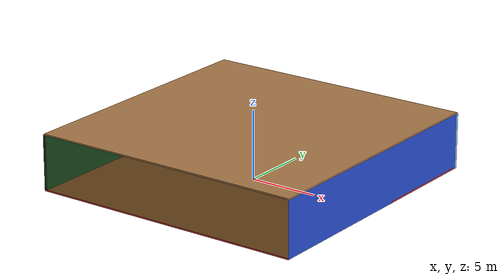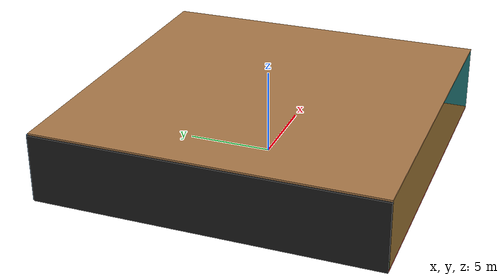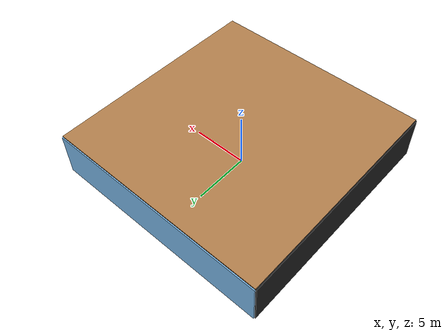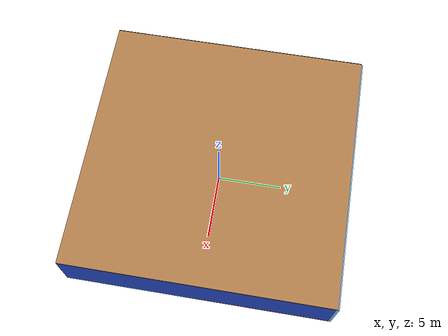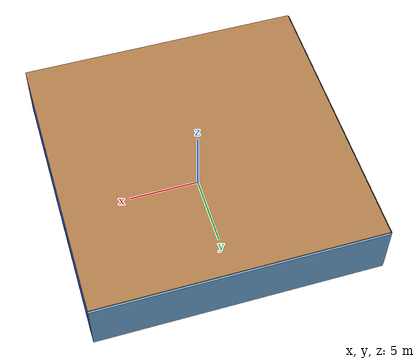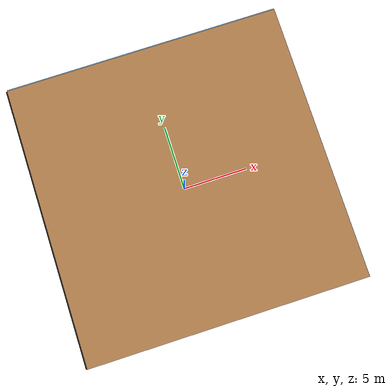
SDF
<sdf version="1.4">
 <world name="default">
  <physics type="ode">
   <max_step_size>0.001</max_step_size>
   <real_time_factor>1</real_time_factor>
   <real_time_update_rate>1000</real_time_update_rate>
   <gravity>0 0 -9.8</gravity>
  </physics>
  <scene><ambient>0.4 0.4 0.4 1</ambient><background>0.7 0.7 0.7 1</background><shadows>1</shadows></scene>
  <model name="Surrounding">
   <static>1</static>
   <link name="Ceiling">
    <collision name="Ceiling_Collision"><geometry><box><size>20 20 0.1</size></box></geometry></collision>
    <visual name="Ceiling_Visual">
     <geometry><box><size>20 20 0.1</size></box></geometry>
     <material>
      <script><uri>file://media/materials/scripts/gazebo.material</uri><name>Gazebo/Wood</name></script>
     </material>
    </visual>
    <pose>0 0 4.05 0 0 0</pose>
   </link>
   <link name="Wall_South">
    <collision name="Wall_South_Collision">
     <geometry><box><size>20 0 4</size></box></geometry>
     <pose>0 0 2 0 -0 0</pose>
    </collision>
    <visual name="Wall_South_Visual">
     <pose>0 0 2 0 -0 0</pose>
     <geometry><box><size>20 0 4</size></box></geometry>
     <material>
      <script><uri>file://media/materials/scripts/gazebo.material</uri><name>Gazebo/GreenTransparent</name></script>
     </material>
    </visual>
    <velocity_decay><linear>0</linear><angular>0</angular></velocity_decay>
    <pose>0 -10 0 0 -0 0</pose>
   </link>
   <link name="Wall_East">
    <collision name="Wall_21_Collision">
     <geometry><box><size>20 0 4</size></box></geometry>
     <pose>0 0 2 0 -0 0</pose>
    </collision>
    <visual name="Wall_21_Visual">
     <pose>0 0 2 0 -0 0</pose>
     <geometry><box><size>20 0 4</size></box></geometry>
     <material>
      <script><uri>file://media/materials/scripts/gazebo.material</uri><name>Gazebo/BlueGlow</name></script>
     </material>
    </visual>
    <velocity_decay><linear>0</linear><angular>0</angular></velocity_decay>
    <pose>10 0 0 0 -0 1.5708</pose>
   </link>
   <link name="Wall_North">
    <collision name="Wall_22_Collision">
     <geometry><box><size>20 0.2 4</size></box></geometry>
     <pose>0 0 2 0 -0 0</pose>
    </collision>
    <visual name="Wall_22_Visual">
     <pose>0 0 2 0 -0 0</pose>
     <geometry><box><size>20 0.2 4</size></box></geometry>
     <material>
      <script><uri>file://media/materials/scripts/gazebo.material</uri><name>Gazebo/SkyBlue</name></script>
     </material>
    </visual>
    <velocity_decay><linear>0</linear><angular>0</angular></velocity_decay>
    <pose>0 10 0 0 -0 0</pose>
   </link>
   <link name="Wall_West">
    <collision name="Wall_23_Collision">
     <geometry><box><size>20 0.2 4</size></box></geometry>
     <pose>0 0 2 0 -0 0</pose>
    </collision>
    <visual name="Wall_23_Visual">
     <pose>0 0 2 0 -0 0</pose>
     <geometry><box><size>20 0.2 4</size></box></geometry>
     <material>
      <script><uri>file://media/materials/scripts/gazebo.material</uri><name>Gazebo/FlatBlack</name></script>
     </material>
    </visual>
    <velocity_decay><linear>0</linear><angular>0</angular></velocity_decay>
    <pose>-10 0 0 0 0 -1.5708</pose>
   </link>
   <link name="Ground_link">
    <collision name="collision">
     <pose>0 0 .05 0 -0 0</pose>
     <geometry><box><size>20 20 0.1</size></box></geometry>
    </collision>
    <visual name="visual">
     <pose>0 0 .05 0 -0 0</pose>
     <geometry><box><size>20 20 0.1</size></box></geometry>
     <material>
      <script><uri>file://media/materials/scripts/gazebo.material</uri><name>Gazebo/RedBright</name></script>
     </material>
    </visual>
   </link>
   <static>1</static>
  </model>
  <spherical_coordinates>
   <surface_model>EARTH_WGS84</surface_model>
   <latitude_deg>0</latitude_deg>
   <longitude_deg>0</longitude_deg>
   <elevation>0</elevation>
   <heading_deg>0</heading_deg>
  </spherical_coordinates>
  <light name="lightball_0" type="diffuse">
   <diffuse>0.8 0.8 0.8 1</diffuse>
   <specular>0.2 0.2 0.2 1</specular>
   <attenuation>
    <range>100</range>
    <constant>0.7</constant>
    <linear>0.01</linear>
    <quadratic>0.001</quadratic>
   </attenuation>
   <direction>-0.5 0.1 -0.9</direction>
   <pose>-8.53108662582 -6.27124077405 3.87354249046 0 0 0</pose>
  </light>
  <light name="lightball_1" type="diffuse">
   <diffuse>0.8 0.8 0.8 1</diffuse>
   <specular>0.2 0.2 0.2 1</specular>
   <attenuation>
    <range>100</range>
    <constant>0.7</constant>
    <linear>0.01</linear>
    <quadratic>0.001</quadratic>
   </attenuation>
   <direction>-0.5 0.1 -0.9</direction>
   <pose>7.86595504722 5.01205081302 1.62002464436 0 0 0</pose>
  </light>
  <light name="lightball_2" type="diffuse">
   <diffuse>0.8 0.8 0.8 1</diffuse>
   <specular>0.2 0.2 0.2 1</specular>
   <attenuation>
    <range>100</range>
    <constant>0.7</constant>
    <linear>0.01</linear>
    <quadratic>0.001</quadratic>
   </attenuation>
   <direction>-0.5 0.1 -0.9</direction>
   <pose>-3.87781314636 -4.51995348665 2.072991493 0 0 0</pose>
  </light>
  <light name="lightball_3" type="diffuse">
   <diffuse>0.8 0.8 0.8 1</diffuse>
   <specular>0.2 0.2 0.2 1</specular>
   <attenuation>
    <range>100</range>
    <constant>0.7</constant>
    <linear>0.01</linear>
    <quadratic>0.001</quadratic>
   </attenuation>
   <direction>-0.5 0.1 -0.9</direction>
   <pose>-8.15370287127 -2.47082702577 2.88030177947 0 0 0</pose>
  </light>
  <light name="lightball_4" type="diffuse">
   <diffuse>0.8 0.8 0.8 1</diffuse>
   <specular>0.2 0.2 0.2 1</specular>
   <attenuation>
    <range>100</range>
    <constant>0.7</constant>
    <linear>0.01</linear>
    <quadratic>0.001</quadratic>
   </attenuation>
   <direction>-0.5 0.1 -0.9</direction>
   <pose>-2.76512380046 -6.18629890254 3.72592345806 0 0 0</pose>
  </light>
  <light name="lightball_5" type="diffuse">
   <diffuse>0.8 0.8 0.8 1</diffuse>
   <specular>0.2 0.2 0.2 1</specular>
   <attenuation>
    <range>100</range>
    <constant>0.7</constant>
    <linear>0.01</linear>
    <quadratic>0.001</quadratic>
   </attenuation>
   <direction>-0.5 0.1 -0.9</direction>
   <pose>6.036838578 -8.41338662767 1.86056886314 0 0 0</pose>
  </light>
  <light name="lightball_6" type="diffuse">
   <diffuse>0.8 0.8 0.8 1</diffuse>
   <specular>0.2 0.2 0.2 1</specular>
   <attenuation>
    <range>100</range>
    <constant>0.7</constant>
    <linear>0.01</linear>
    <quadratic>0.001</quadratic>
   </attenuation>
   <direction>-0.5 0.1 -0.9</direction>
   <pose>-7.01137999915 -1.72799858741 3.6032329963 0 0 0</pose>
  </light>
  <light name="lightball_7" type="diffuse">
   <diffuse>0.8 0.8 0.8 1</diffuse>
   <specular>0.2 0.2 0.2 1</specular>
   <attenuation>
    <range>100</range>
    <constant>0.7</constant>
    <linear>0.01</linear>
    <quadratic>0.001</quadratic>
   </attenuation>
   <direction>-0.5 0.1 -0.9</direction>
   <pose>8.68012426511 0.255790227054 3.43884599046 0 0 0</pose>
  </light>
  <light name="lightball_8" type="diffuse">
   <diffuse>0.8 0.8 0.8 1</diffuse>
   <specular>0.2 0.2 0.2 1</specular>
   <attenuation>
    <range>100</range>
    <constant>0.7</constant>
    <linear>0.01</linear>
    <quadratic>0.001</quadratic>
   </attenuation>
   <direction>-0.5 0.1 -0.9</direction>
   <pose>-5.81362993295 -5.9075122317 1.77342862225 0 0 0</pose>
  </light>
  <light name="lightball_9" type="diffuse">
   <diffuse>0.8 0.8 0.8 1</diffuse>
   <specular>0.2 0.2 0.2 1</specular>
   <attenuation>
    <range>100</range>
    <constant>0.7</constant>
    <linear>0.01</linear>
    <quadratic>0.001</quadratic>
   </attenuation>
   <direction>-0.5 0.1 -0.9</direction>
   <pose>5.9543144958 -7.6021388134 2.09469588076 0 0 0</pose>
  </light>
  <light name="lightball_10" type="diffuse">
   <diffuse>0.8 0.8 0.8 1</diffuse>
   <specular>0.2 0.2 0.2 1</specular>
   <attenuation>
    <range>100</range>
    <constant>0.7</constant>
    <linear>0.01</linear>
    <quadratic>0.001</quadratic>
   </attenuation>
   <direction>-0.5 0.1 -0.9</direction>
   <pose>1.8192532816 7.45002588818 2.63490928035 0 0 0</pose>
  </light>
  <light name="lightball_11" type="diffuse">
   <diffuse>0.8 0.8 0.8 1</diffuse>
   <specular>0.2 0.2 0.2 1</specular>
   <attenuation>
    <range>100</range>
    <constant>0.7</constant>
    <linear>0.01</linear>
    <quadratic>0.001</quadratic>
   </attenuation>
   <direction>-0.5 0.1 -0.9</direction>
   <pose>-2.87447983057 0.445707866759 2.50172249259 0 0 0</pose>
  </light>
  <light name="lightball_12" type="diffuse">
   <diffuse>0.8 0.8 0.8 1</diffuse>
   <specular>0.2 0.2 0.2 1</specular>
   <attenuation>
    <range>100</range>
    <constant>0.7</constant>
    <linear>0.01</linear>
    <quadratic>0.001</quadratic>
   </attenuation>
   <direction>-0.5 0.1 -0.9</direction>
   <pose>-4.33324070264 3.80653380325 2.60897968969 0 0 0</pose>
  </light>
  <light name="lightball_13" type="diffuse">
   <diffuse>0.8 0.8 0.8 1</diffuse>
   <specular>0.2 0.2 0.2 1</specular>
   <attenuation>
    <range>100</range>
    <constant>0.7</constant>
    <linear>0.01</linear>
    <quadratic>0.001</quadratic>
   </attenuation>
   <direction>-0.5 0.1 -0.9</direction>
   <pose>8.13521652201 3.37178289711 2.35033101692 0 0 0</pose>
  </light>
  <include><uri>model://cabinet</uri><pose>-5.27376462552 2.07944568588 0 0 0 1.52554147854</pose></include>
  <include><uri>model://cabinet</uri><pose>1.21092810055 7.86803213974 0 0 0 0.816554626794</pose></include>
  <include><uri>model://cabinet</uri><pose>5.18885891221 -1.6062623532 0 0 0 1.20819928523</pose></include>
 </world>
</sdf>

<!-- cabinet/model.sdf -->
<sdf version="1.5">
  <model name="cabinet">
    <static>true</static>
    <link name="cabinet_bottom_plate">
      <inertial>
        <pose>0 0 -1 0 0 0</pose>
        <inertia>
          <ixx>2.050000</ixx>
          <ixy>0</ixy>
          <ixz>0</ixz>
          <iyy>2.050000</iyy>
          <iyz>0</iyz>
          <izz>2.050000</izz>
        </inertia>
        <mass>25.000000</mass>
      </inertial>
      <collision name="cabinet_bottom_plate_geom">
        <pose>0 0 0.010000 0 0 0</pose>
        <geometry>
          <box>
            <size>0.450000 0.450000 0.020000</size>
          </box>
        </geometry>
      </collision>
      <visual name="cabinet_bottom_plate_geom_visual">
        <pose>0 0 0.010000 0 0 0</pose>
        <geometry>
          <box>
            <size>0.450000 0.450000 0.020000</size>
          </box>
        </geometry>
        <material>
          <script>
            <uri>model://media/materials/scripts/gazebo.material</uri>
            <name>Gazebo/Wood</name>
          </script>
        </material>
      </visual>
      <collision name="cabinet_bottom_plate_geom_cabinet_back_plate">
        <pose>0.235000 0 0.510000 0 0 0</pose>
        <geometry>
          <box>
            <size>0.020000 0.450000 1.020000</size>
          </box>
        </geometry>
      </collision>
      <visual name="cabinet_bottom_plate_geom_cabinet_back_plate_visual">
        <pose>0.235000 0 0.510000 0 0 0</pose>
        <geometry>
          <box>
            <size>0.020000 0.450000 1.020000</size>
          </box>
        </geometry>
        <material>
          <script>
            <uri>model://media/materials/scripts/gazebo.material</uri>
            <name>Gazebo/Wood</name>
          </script>
        </material>
      </visual>
      <collision name="cabinet_bottom_plate_geom_cabinet_left_plate">
        <pose>0 0.235000 0.510000 0 0 0</pose>
        <geometry>
          <box>
            <size>0.450000 0.020000 1.020000</size>
          </box>
        </geometry>
      </collision>
      <visual name="cabinet_bottom_plate_geom_cabinet_left_plate_visual">
        <pose>0 0.235000 0.510000 0 0 0</pose>
        <geometry>
          <box>
            <size>0.450000 0.020000 1.020000</size>
          </box>
        </geometry>
        <material>
          <script>
            <uri>model://media/materials/scripts/gazebo.material</uri>
            <name>Gazebo/Wood</name>
          </script>
        </material>
      </visual>
      <collision name="cabinet_bottom_plate_geom_cabinet_middle_plate">
        <pose>0 0 0.510000 0 0 0</pose>
        <geometry>
          <box>
            <size>0.450000 0.450000 0.020000</size>
          </box>
        </geometry>
      </collision>
      <visual name="cabinet_bottom_plate_geom_cabinet_middle_plate_visual">
        <pose>0 0 0.510000 0 0 0</pose>
        <geometry>
          <box>
            <size>0.450000 0.450000 0.020000</size>
          </box>
        </geometry>
        <material>
          <script>
            <uri>model://media/materials/scripts/gazebo.material</uri>
            <name>Gazebo/Wood</name>
          </script>
        </material>
      </visual>
      <collision name="cabinet_bottom_plate_geom_cabinet_right_plate">
        <pose>0 -0.235000 0.510000 0 0 0</pose>
        <geometry>
          <box>
            <size>0.450000 0.020000 1.020000</size>
          </box>
        </geometry>
      </collision>
      <visual name="cabinet_bottom_plate_geom_cabinet_right_plate_visual">
        <pose>0 -0.235000 0.510000 0 0 0</pose>
        <geometry>
          <box>
            <size>0.450000 0.020000 1.020000</size>
          </box>
        </geometry>
        <material>
          <script>
            <uri>model://media/materials/scripts/gazebo.material</uri>
            <name>Gazebo/Wood</name>
          </script>
        </material>
      </visual>
      <collision name="cabinet_bottom_plate_geom_cabinet_top_plate">
        <pose>0 0 1.010000 0 0 0</pose>
        <geometry>
          <box>
            <size>0.450000 0.450000 0.020000</size>
          </box>
        </geometry>
      </collision>
      <visual name="cabinet_bottom_plate_geom_cabinet_top_plate_visual">
        <pose>0 0 1.010000 0 0 0</pose>
        <geometry>
          <box>
            <size>0.450000 0.450000 0.020000</size>
          </box>
        </geometry>
        <material>
          <script>
            <uri>model://media/materials/scripts/gazebo.material</uri>
            <name>Gazebo/Wood</name>
          </script>
        </material>
      </visual>
    </link>
  </model>
</sdf>
